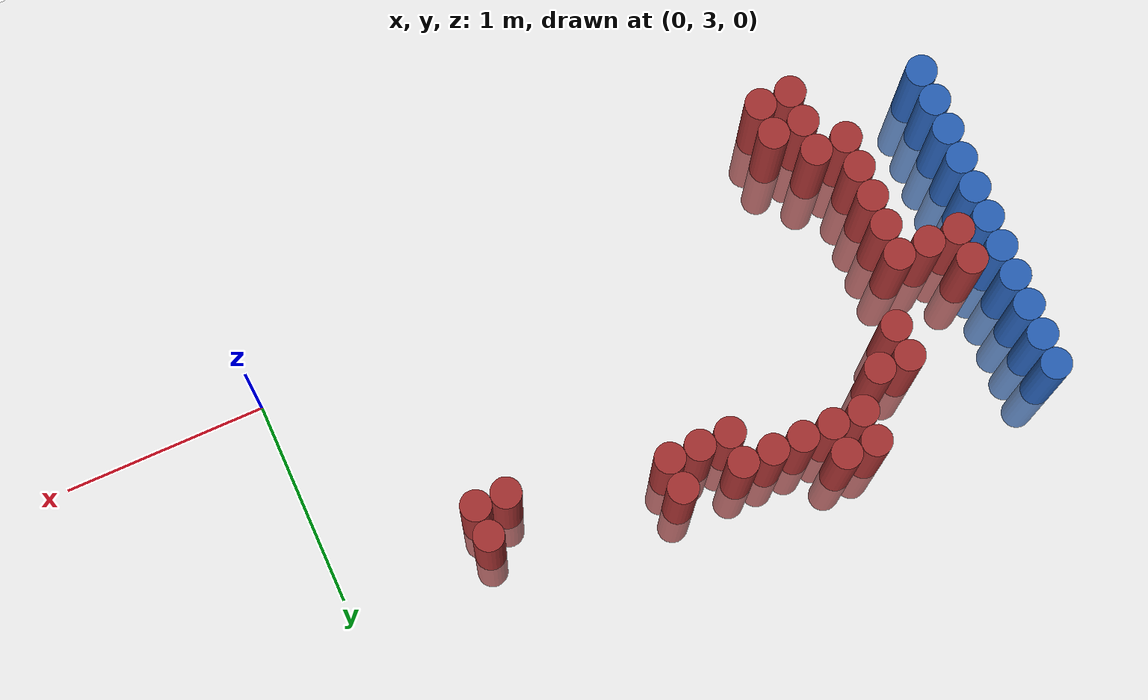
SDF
<sdf version="1.6">
 <world name="default">
  <model name="ground_plane">
   <static>1</static>
   <link name="link">
    <collision name="collision">
     <geometry><plane><normal>0 0 1</normal><size>100 100</size></plane></geometry>
     <surface><friction><ode><mu>100</mu><mu2>50</mu2></ode></friction></surface>
    </collision>
    <visual name="visual">
     <cast_shadows>0</cast_shadows>
     <geometry><plane><normal>0 0 1</normal><size>100 100</size></plane></geometry>
     <material>
      <script><uri>file://media/materials/scripts/gazebo.material</uri><name>Gazebo/Grey</name></script>
     </material>
    </visual>
   </link>
  </model>
  <model name="unit_cylinder_153">
   <static>1</static>
   <pose>-3.425000 2.875000 0.000000 0.000000 0.000000 0.000000</pose>
   <link name="link">
    <inertial>
     <mass>1</mass>
     <inertia><ixx>0.145833</ixx><ixy>0</ixy><ixz>0</ixz><iyy>0.145833</iyy><iyz>0</iyz><izz>0.125</izz></inertia>
    </inertial>
    <collision name="collision">
     <geometry><cylinder><radius>0.075000</radius><length>1.5</length></cylinder></geometry>
    </collision>
    <visual name="visual">
     <geometry><cylinder><radius>0.075000</radius><length>1.5</length></cylinder></geometry>
     <material>
      <ambient>0.152000 0.379000 0.720000 1</ambient>
      <diffuse>0.152000 0.379000 0.720000 1</diffuse>
     </material>
     <material>
      <script><name>Gazebo/Grey</name><uri>file://media/materials/scripts/gazebo.material</uri></script>
     </material>
    </visual>
   </link>
  </model>
  <model name="unit_cylinder_155">
   <static>1</static>
   <pose>-3.425000 3.025000 0.000000 0.000000 0.000000 0.000000</pose>
   <link name="link">
    <inertial>
     <mass>1</mass>
     <inertia><ixx>0.145833</ixx><ixy>0</ixy><ixz>0</ixz><iyy>0.145833</iyy><iyz>0</iyz><izz>0.125</izz></inertia>
    </inertial>
    <collision name="collision">
     <geometry><cylinder><radius>0.075000</radius><length>1.5</length></cylinder></geometry>
    </collision>
    <visual name="visual">
     <geometry><cylinder><radius>0.075000</radius><length>1.5</length></cylinder></geometry>
     <material>
      <ambient>0.152000 0.379000 0.720000 1</ambient>
      <diffuse>0.152000 0.379000 0.720000 1</diffuse>
     </material>
     <material>
      <script><name>Gazebo/Grey</name><uri>file://media/materials/scripts/gazebo.material</uri></script>
     </material>
    </visual>
   </link>
  </model>
  <model name="unit_cylinder_157">
   <static>1</static>
   <pose>-3.425000 3.175000 0.000000 0.000000 0.000000 0.000000</pose>
   <link name="link">
    <inertial>
     <mass>1</mass>
     <inertia><ixx>0.145833</ixx><ixy>0</ixy><ixz>0</ixz><iyy>0.145833</iyy><iyz>0</iyz><izz>0.125</izz></inertia>
    </inertial>
    <collision name="collision">
     <geometry><cylinder><radius>0.075000</radius><length>1.5</length></cylinder></geometry>
    </collision>
    <visual name="visual">
     <geometry><cylinder><radius>0.075000</radius><length>1.5</length></cylinder></geometry>
     <material>
      <ambient>0.152000 0.379000 0.720000 1</ambient>
      <diffuse>0.152000 0.379000 0.720000 1</diffuse>
     </material>
     <material>
      <script><name>Gazebo/Grey</name><uri>file://media/materials/scripts/gazebo.material</uri></script>
     </material>
    </visual>
   </link>
  </model>
  <model name="unit_cylinder_159">
   <static>1</static>
   <pose>-3.425000 3.325000 0.000000 0.000000 0.000000 0.000000</pose>
   <link name="link">
    <inertial>
     <mass>1</mass>
     <inertia><ixx>0.145833</ixx><ixy>0</ixy><ixz>0</ixz><iyy>0.145833</iyy><iyz>0</iyz><izz>0.125</izz></inertia>
    </inertial>
    <collision name="collision">
     <geometry><cylinder><radius>0.075000</radius><length>1.5</length></cylinder></geometry>
    </collision>
    <visual name="visual">
     <geometry><cylinder><radius>0.075000</radius><length>1.5</length></cylinder></geometry>
     <material>
      <ambient>0.152000 0.379000 0.720000 1</ambient>
      <diffuse>0.152000 0.379000 0.720000 1</diffuse>
     </material>
     <material>
      <script><name>Gazebo/Grey</name><uri>file://media/materials/scripts/gazebo.material</uri></script>
     </material>
    </visual>
   </link>
  </model>
  <model name="unit_cylinder_161">
   <static>1</static>
   <pose>-3.425000 3.475000 0.000000 0.000000 0.000000 0.000000</pose>
   <link name="link">
    <inertial>
     <mass>1</mass>
     <inertia><ixx>0.145833</ixx><ixy>0</ixy><ixz>0</ixz><iyy>0.145833</iyy><iyz>0</iyz><izz>0.125</izz></inertia>
    </inertial>
    <collision name="collision">
     <geometry><cylinder><radius>0.075000</radius><length>1.5</length></cylinder></geometry>
    </collision>
    <visual name="visual">
     <geometry><cylinder><radius>0.075000</radius><length>1.5</length></cylinder></geometry>
     <material>
      <ambient>0.152000 0.379000 0.720000 1</ambient>
      <diffuse>0.152000 0.379000 0.720000 1</diffuse>
     </material>
     <material>
      <script><name>Gazebo/Grey</name><uri>file://media/materials/scripts/gazebo.material</uri></script>
     </material>
    </visual>
   </link>
  </model>
  <model name="unit_cylinder_163">
   <static>1</static>
   <pose>-3.425000 3.625000 0.000000 0.000000 0.000000 0.000000</pose>
   <link name="link">
    <inertial>
     <mass>1</mass>
     <inertia><ixx>0.145833</ixx><ixy>0</ixy><ixz>0</ixz><iyy>0.145833</iyy><iyz>0</iyz><izz>0.125</izz></inertia>
    </inertial>
    <collision name="collision">
     <geometry><cylinder><radius>0.075000</radius><length>1.5</length></cylinder></geometry>
    </collision>
    <visual name="visual">
     <geometry><cylinder><radius>0.075000</radius><length>1.5</length></cylinder></geometry>
     <material>
      <ambient>0.152000 0.379000 0.720000 1</ambient>
      <diffuse>0.152000 0.379000 0.720000 1</diffuse>
     </material>
     <material>
      <script><name>Gazebo/Grey</name><uri>file://media/materials/scripts/gazebo.material</uri></script>
     </material>
    </visual>
   </link>
  </model>
  <model name="unit_cylinder_165">
   <static>1</static>
   <pose>-3.425000 3.775000 0.000000 0.000000 0.000000 0.000000</pose>
   <link name="link">
    <inertial>
     <mass>1</mass>
     <inertia><ixx>0.145833</ixx><ixy>0</ixy><ixz>0</ixz><iyy>0.145833</iyy><iyz>0</iyz><izz>0.125</izz></inertia>
    </inertial>
    <collision name="collision">
     <geometry><cylinder><radius>0.075000</radius><length>1.5</length></cylinder></geometry>
    </collision>
    <visual name="visual">
     <geometry><cylinder><radius>0.075000</radius><length>1.5</length></cylinder></geometry>
     <material>
      <ambient>0.152000 0.379000 0.720000 1</ambient>
      <diffuse>0.152000 0.379000 0.720000 1</diffuse>
     </material>
     <material>
      <script><name>Gazebo/Grey</name><uri>file://media/materials/scripts/gazebo.material</uri></script>
     </material>
    </visual>
   </link>
  </model>
  <model name="unit_cylinder_167">
   <static>1</static>
   <pose>-3.425000 3.925000 0.000000 0.000000 0.000000 0.000000</pose>
   <link name="link">
    <inertial>
     <mass>1</mass>
     <inertia><ixx>0.145833</ixx><ixy>0</ixy><ixz>0</ixz><iyy>0.145833</iyy><iyz>0</iyz><izz>0.125</izz></inertia>
    </inertial>
    <collision name="collision">
     <geometry><cylinder><radius>0.075000</radius><length>1.5</length></cylinder></geometry>
    </collision>
    <visual name="visual">
     <geometry><cylinder><radius>0.075000</radius><length>1.5</length></cylinder></geometry>
     <material>
      <ambient>0.152000 0.379000 0.720000 1</ambient>
      <diffuse>0.152000 0.379000 0.720000 1</diffuse>
     </material>
     <material>
      <script><name>Gazebo/Grey</name><uri>file://media/materials/scripts/gazebo.material</uri></script>
     </material>
    </visual>
   </link>
  </model>
  <model name="unit_cylinder_169">
   <static>1</static>
   <pose>-3.425000 4.075000 0.000000 0.000000 0.000000 0.000000</pose>
   <link name="link">
    <inertial>
     <mass>1</mass>
     <inertia><ixx>0.145833</ixx><ixy>0</ixy><ixz>0</ixz><iyy>0.145833</iyy><iyz>0</iyz><izz>0.125</izz></inertia>
    </inertial>
    <collision name="collision">
     <geometry><cylinder><radius>0.075000</radius><length>1.5</length></cylinder></geometry>
    </collision>
    <visual name="visual">
     <geometry><cylinder><radius>0.075000</radius><length>1.5</length></cylinder></geometry>
     <material>
      <ambient>0.152000 0.379000 0.720000 1</ambient>
      <diffuse>0.152000 0.379000 0.720000 1</diffuse>
     </material>
     <material>
      <script><name>Gazebo/Grey</name><uri>file://media/materials/scripts/gazebo.material</uri></script>
     </material>
    </visual>
   </link>
  </model>
  <model name="unit_cylinder_171">
   <static>1</static>
   <pose>-3.425000 4.225000 0.000000 0.000000 0.000000 0.000000</pose>
   <link name="link">
    <inertial>
     <mass>1</mass>
     <inertia><ixx>0.145833</ixx><ixy>0</ixy><ixz>0</ixz><iyy>0.145833</iyy><iyz>0</iyz><izz>0.125</izz></inertia>
    </inertial>
    <collision name="collision">
     <geometry><cylinder><radius>0.075000</radius><length>1.5</length></cylinder></geometry>
    </collision>
    <visual name="visual">
     <geometry><cylinder><radius>0.075000</radius><length>1.5</length></cylinder></geometry>
     <material>
      <ambient>0.152000 0.379000 0.720000 1</ambient>
      <diffuse>0.152000 0.379000 0.720000 1</diffuse>
     </material>
     <material>
      <script><name>Gazebo/Grey</name><uri>file://media/materials/scripts/gazebo.material</uri></script>
     </material>
    </visual>
   </link>
  </model>
  <model name="unit_cylinder_173">
   <static>1</static>
   <pose>-3.425000 4.375000 0.000000 0.000000 0.000000 0.000000</pose>
   <link name="link">
    <inertial>
     <mass>1</mass>
     <inertia><ixx>0.145833</ixx><ixy>0</ixy><ixz>0</ixz><iyy>0.145833</iyy><iyz>0</iyz><izz>0.125</izz></inertia>
    </inertial>
    <collision name="collision">
     <geometry><cylinder><radius>0.075000</radius><length>1.5</length></cylinder></geometry>
    </collision>
    <visual name="visual">
     <geometry><cylinder><radius>0.075000</radius><length>1.5</length></cylinder></geometry>
     <material>
      <ambient>0.152000 0.379000 0.720000 1</ambient>
      <diffuse>0.152000 0.379000 0.720000 1</diffuse>
     </material>
     <material>
      <script><name>Gazebo/Grey</name><uri>file://media/materials/scripts/gazebo.material</uri></script>
     </material>
    </visual>
   </link>
  </model>
  <model name="unit_cylinder_240">
   <static>1</static>
   <pose>-3.425000 2.875000 0.000000 0.000000 0.000000 0.000000</pose>
   <link name="link">
    <inertial>
     <mass>1</mass>
     <inertia><ixx>0.145833</ixx><ixy>0</ixy><ixz>0</ixz><iyy>0.145833</iyy><iyz>0</iyz><izz>0.125</izz></inertia>
    </inertial>
    <collision name="collision">
     <geometry><cylinder><radius>0.075000</radius><length>1.5</length></cylinder></geometry>
    </collision>
    <visual name="visual">
     <geometry><cylinder><radius>0.075000</radius><length>1.5</length></cylinder></geometry>
     <material>
      <ambient>0.152000 0.379000 0.720000 1</ambient>
      <diffuse>0.152000 0.379000 0.720000 1</diffuse>
     </material>
     <material>
      <script><name>Gazebo/Grey</name><uri>file://media/materials/scripts/gazebo.material</uri></script>
     </material>
    </visual>
   </link>
  </model>
  <model name="unit_cylinder_241">
   <static>1</static>
   <pose>-3.425000 3.025000 0.000000 0.000000 0.000000 0.000000</pose>
   <link name="link">
    <inertial>
     <mass>1</mass>
     <inertia><ixx>0.145833</ixx><ixy>0</ixy><ixz>0</ixz><iyy>0.145833</iyy><iyz>0</iyz><izz>0.125</izz></inertia>
    </inertial>
    <collision name="collision">
     <geometry><cylinder><radius>0.075000</radius><length>1.5</length></cylinder></geometry>
    </collision>
    <visual name="visual">
     <geometry><cylinder><radius>0.075000</radius><length>1.5</length></cylinder></geometry>
     <material>
      <ambient>0.152000 0.379000 0.720000 1</ambient>
      <diffuse>0.152000 0.379000 0.720000 1</diffuse>
     </material>
     <material>
      <script><name>Gazebo/Grey</name><uri>file://media/materials/scripts/gazebo.material</uri></script>
     </material>
    </visual>
   </link>
  </model>
  <model name="unit_cylinder_242">
   <static>1</static>
   <pose>-3.425000 3.175000 0.000000 0.000000 0.000000 0.000000</pose>
   <link name="link">
    <inertial>
     <mass>1</mass>
     <inertia><ixx>0.145833</ixx><ixy>0</ixy><ixz>0</ixz><iyy>0.145833</iyy><iyz>0</iyz><izz>0.125</izz></inertia>
    </inertial>
    <collision name="collision">
     <geometry><cylinder><radius>0.075000</radius><length>1.5</length></cylinder></geometry>
    </collision>
    <visual name="visual">
     <geometry><cylinder><radius>0.075000</radius><length>1.5</length></cylinder></geometry>
     <material>
      <ambient>0.152000 0.379000 0.720000 1</ambient>
      <diffuse>0.152000 0.379000 0.720000 1</diffuse>
     </material>
     <material>
      <script><name>Gazebo/Grey</name><uri>file://media/materials/scripts/gazebo.material</uri></script>
     </material>
    </visual>
   </link>
  </model>
  <model name="unit_cylinder_243">
   <static>1</static>
   <pose>-3.425000 3.325000 0.000000 0.000000 0.000000 0.000000</pose>
   <link name="link">
    <inertial>
     <mass>1</mass>
     <inertia><ixx>0.145833</ixx><ixy>0</ixy><ixz>0</ixz><iyy>0.145833</iyy><iyz>0</iyz><izz>0.125</izz></inertia>
    </inertial>
    <collision name="collision">
     <geometry><cylinder><radius>0.075000</radius><length>1.5</length></cylinder></geometry>
    </collision>
    <visual name="visual">
     <geometry><cylinder><radius>0.075000</radius><length>1.5</length></cylinder></geometry>
     <material>
      <ambient>0.152000 0.379000 0.720000 1</ambient>
      <diffuse>0.152000 0.379000 0.720000 1</diffuse>
     </material>
     <material>
      <script><name>Gazebo/Grey</name><uri>file://media/materials/scripts/gazebo.material</uri></script>
     </material>
    </visual>
   </link>
  </model>
  <model name="unit_cylinder_244">
   <static>1</static>
   <pose>-3.425000 3.475000 0.000000 0.000000 0.000000 0.000000</pose>
   <link name="link">
    <inertial>
     <mass>1</mass>
     <inertia><ixx>0.145833</ixx><ixy>0</ixy><ixz>0</ixz><iyy>0.145833</iyy><iyz>0</iyz><izz>0.125</izz></inertia>
    </inertial>
    <collision name="collision">
     <geometry><cylinder><radius>0.075000</radius><length>1.5</length></cylinder></geometry>
    </collision>
    <visual name="visual">
     <geometry><cylinder><radius>0.075000</radius><length>1.5</length></cylinder></geometry>
     <material>
      <ambient>0.152000 0.379000 0.720000 1</ambient>
      <diffuse>0.152000 0.379000 0.720000 1</diffuse>
     </material>
     <material>
      <script><name>Gazebo/Grey</name><uri>file://media/materials/scripts/gazebo.material</uri></script>
     </material>
    </visual>
   </link>
  </model>
  <model name="unit_cylinder_245">
   <static>1</static>
   <pose>-3.425000 3.625000 0.000000 0.000000 0.000000 0.000000</pose>
   <link name="link">
    <inertial>
     <mass>1</mass>
     <inertia><ixx>0.145833</ixx><ixy>0</ixy><ixz>0</ixz><iyy>0.145833</iyy><iyz>0</iyz><izz>0.125</izz></inertia>
    </inertial>
    <collision name="collision">
     <geometry><cylinder><radius>0.075000</radius><length>1.5</length></cylinder></geometry>
    </collision>
    <visual name="visual">
     <geometry><cylinder><radius>0.075000</radius><length>1.5</length></cylinder></geometry>
     <material>
      <ambient>0.152000 0.379000 0.720000 1</ambient>
      <diffuse>0.152000 0.379000 0.720000 1</diffuse>
     </material>
     <material>
      <script><name>Gazebo/Grey</name><uri>file://media/materials/scripts/gazebo.material</uri></script>
     </material>
    </visual>
   </link>
  </model>
  <model name="unit_cylinder_246">
   <static>1</static>
   <pose>-3.425000 3.775000 0.000000 0.000000 0.000000 0.000000</pose>
   <link name="link">
    <inertial>
     <mass>1</mass>
     <inertia><ixx>0.145833</ixx><ixy>0</ixy><ixz>0</ixz><iyy>0.145833</iyy><iyz>0</iyz><izz>0.125</izz></inertia>
    </inertial>
    <collision name="collision">
     <geometry><cylinder><radius>0.075000</radius><length>1.5</length></cylinder></geometry>
    </collision>
    <visual name="visual">
     <geometry><cylinder><radius>0.075000</radius><length>1.5</length></cylinder></geometry>
     <material>
      <ambient>0.152000 0.379000 0.720000 1</ambient>
      <diffuse>0.152000 0.379000 0.720000 1</diffuse>
     </material>
     <material>
      <script><name>Gazebo/Grey</name><uri>file://media/materials/scripts/gazebo.material</uri></script>
     </material>
    </visual>
   </link>
  </model>
  <model name="unit_cylinder_247">
   <static>1</static>
   <pose>-3.425000 3.925000 0.000000 0.000000 0.000000 0.000000</pose>
   <link name="link">
    <inertial>
     <mass>1</mass>
     <inertia><ixx>0.145833</ixx><ixy>0</ixy><ixz>0</ixz><iyy>0.145833</iyy><iyz>0</iyz><izz>0.125</izz></inertia>
    </inertial>
    <collision name="collision">
     <geometry><cylinder><radius>0.075000</radius><length>1.5</length></cylinder></geometry>
    </collision>
    <visual name="visual">
     <geometry><cylinder><radius>0.075000</radius><length>1.5</length></cylinder></geometry>
     <material>
      <ambient>0.152000 0.379000 0.720000 1</ambient>
      <diffuse>0.152000 0.379000 0.720000 1</diffuse>
     </material>
     <material>
      <script><name>Gazebo/Grey</name><uri>file://media/materials/scripts/gazebo.material</uri></script>
     </material>
    </visual>
   </link>
  </model>
  <model name="unit_cylinder_248">
   <static>1</static>
   <pose>-3.425000 4.075000 0.000000 0.000000 0.000000 0.000000</pose>
   <link name="link">
    <inertial>
     <mass>1</mass>
     <inertia><ixx>0.145833</ixx><ixy>0</ixy><ixz>0</ixz><iyy>0.145833</iyy><iyz>0</iyz><izz>0.125</izz></inertia>
    </inertial>
    <collision name="collision">
     <geometry><cylinder><radius>0.075000</radius><length>1.5</length></cylinder></geometry>
    </collision>
    <visual name="visual">
     <geometry><cylinder><radius>0.075000</radius><length>1.5</length></cylinder></geometry>
     <material>
      <ambient>0.152000 0.379000 0.720000 1</ambient>
      <diffuse>0.152000 0.379000 0.720000 1</diffuse>
     </material>
     <material>
      <script><name>Gazebo/Grey</name><uri>file://media/materials/scripts/gazebo.material</uri></script>
     </material>
    </visual>
   </link>
  </model>
  <model name="unit_cylinder_249">
   <static>1</static>
   <pose>-3.425000 4.225000 0.000000 0.000000 0.000000 0.000000</pose>
   <link name="link">
    <inertial>
     <mass>1</mass>
     <inertia><ixx>0.145833</ixx><ixy>0</ixy><ixz>0</ixz><iyy>0.145833</iyy><iyz>0</iyz><izz>0.125</izz></inertia>
    </inertial>
    <collision name="collision">
     <geometry><cylinder><radius>0.075000</radius><length>1.5</length></cylinder></geometry>
    </collision>
    <visual name="visual">
     <geometry><cylinder><radius>0.075000</radius><length>1.5</length></cylinder></geometry>
     <material>
      <ambient>0.152000 0.379000 0.720000 1</ambient>
      <diffuse>0.152000 0.379000 0.720000 1</diffuse>
     </material>
     <material>
      <script><name>Gazebo/Grey</name><uri>file://media/materials/scripts/gazebo.material</uri></script>
     </material>
    </visual>
   </link>
  </model>
  <model name="unit_cylinder_250">
   <static>1</static>
   <pose>-3.425000 4.375000 0.000000 0.000000 0.000000 0.000000</pose>
   <link name="link">
    <inertial>
     <mass>1</mass>
     <inertia><ixx>0.145833</ixx><ixy>0</ixy><ixz>0</ixz><iyy>0.145833</iyy><iyz>0</iyz><izz>0.125</izz></inertia>
    </inertial>
    <collision name="collision">
     <geometry><cylinder><radius>0.075000</radius><length>1.5</length></cylinder></geometry>
    </collision>
    <visual name="visual">
     <geometry><cylinder><radius>0.075000</radius><length>1.5</length></cylinder></geometry>
     <material>
      <ambient>0.152000 0.379000 0.720000 1</ambient>
      <diffuse>0.152000 0.379000 0.720000 1</diffuse>
     </material>
     <material>
      <script><name>Gazebo/Grey</name><uri>file://media/materials/scripts/gazebo.material</uri></script>
     </material>
    </visual>
   </link>
  </model>
  <model name="unit_cylinder_273">
   <static>1</static>
   <pose>-3.275000 3.625000 0.000000 0.000000 0.000000 0.000000</pose>
   <link name="link">
    <inertial>
     <mass>1</mass>
     <inertia><ixx>0.145833</ixx><ixy>0</ixy><ixz>0</ixz><iyy>0.145833</iyy><iyz>0</iyz><izz>0.125</izz></inertia>
    </inertial>
    <collision name="collision">
     <geometry><cylinder><radius>0.075000</radius><length>1.5</length></cylinder></geometry>
    </collision>
    <visual name="visual">
     <geometry><cylinder><radius>0.075000</radius><length>1.5</length></cylinder></geometry>
     <material>
      <ambient>0.648000 0.192000 0.192000 1</ambient>
      <diffuse>0.648000 0.192000 0.192000 1</diffuse>
     </material>
     <material>
      <script><name>Gazebo/Grey</name><uri>file://media/materials/scripts/gazebo.material</uri></script>
     </material>
    </visual>
   </link>
  </model>
  <model name="unit_cylinder_274">
   <static>1</static>
   <pose>-3.275000 3.775000 0.000000 0.000000 0.000000 0.000000</pose>
   <link name="link">
    <inertial>
     <mass>1</mass>
     <inertia><ixx>0.145833</ixx><ixy>0</ixy><ixz>0</ixz><iyy>0.145833</iyy><iyz>0</iyz><izz>0.125</izz></inertia>
    </inertial>
    <collision name="collision">
     <geometry><cylinder><radius>0.075000</radius><length>1.5</length></cylinder></geometry>
    </collision>
    <visual name="visual">
     <geometry><cylinder><radius>0.075000</radius><length>1.5</length></cylinder></geometry>
     <material>
      <ambient>0.648000 0.192000 0.192000 1</ambient>
      <diffuse>0.648000 0.192000 0.192000 1</diffuse>
     </material>
     <material>
      <script><name>Gazebo/Grey</name><uri>file://media/materials/scripts/gazebo.material</uri></script>
     </material>
    </visual>
   </link>
  </model>
  <model name="unit_cylinder_286">
   <static>1</static>
   <pose>-3.125000 3.625000 0.000000 0.000000 0.000000 0.000000</pose>
   <link name="link">
    <inertial>
     <mass>1</mass>
     <inertia><ixx>0.145833</ixx><ixy>0</ixy><ixz>0</ixz><iyy>0.145833</iyy><iyz>0</iyz><izz>0.125</izz></inertia>
    </inertial>
    <collision name="collision">
     <geometry><cylinder><radius>0.075000</radius><length>1.5</length></cylinder></geometry>
    </collision>
    <visual name="visual">
     <geometry><cylinder><radius>0.075000</radius><length>1.5</length></cylinder></geometry>
     <material>
      <ambient>0.648000 0.192000 0.192000 1</ambient>
      <diffuse>0.648000 0.192000 0.192000 1</diffuse>
     </material>
     <material>
      <script><name>Gazebo/Grey</name><uri>file://media/materials/scripts/gazebo.material</uri></script>
     </material>
    </visual>
   </link>
  </model>
  <model name="unit_cylinder_298">
   <static>1</static>
   <pose>-2.975000 3.025000 0.000000 0.000000 0.000000 0.000000</pose>
   <link name="link">
    <inertial>
     <mass>1</mass>
     <inertia><ixx>0.145833</ixx><ixy>0</ixy><ixz>0</ixz><iyy>0.145833</iyy><iyz>0</iyz><izz>0.125</izz></inertia>
    </inertial>
    <collision name="collision">
     <geometry><cylinder><radius>0.075000</radius><length>1.5</length></cylinder></geometry>
    </collision>
    <visual name="visual">
     <geometry><cylinder><radius>0.075000</radius><length>1.5</length></cylinder></geometry>
     <material>
      <ambient>0.648000 0.192000 0.192000 1</ambient>
      <diffuse>0.648000 0.192000 0.192000 1</diffuse>
     </material>
     <material>
      <script><name>Gazebo/Grey</name><uri>file://media/materials/scripts/gazebo.material</uri></script>
     </material>
    </visual>
   </link>
  </model>
  <model name="unit_cylinder_299">
   <static>1</static>
   <pose>-2.975000 3.175000 0.000000 0.000000 0.000000 0.000000</pose>
   <link name="link">
    <inertial>
     <mass>1</mass>
     <inertia><ixx>0.145833</ixx><ixy>0</ixy><ixz>0</ixz><iyy>0.145833</iyy><iyz>0</iyz><izz>0.125</izz></inertia>
    </inertial>
    <collision name="collision">
     <geometry><cylinder><radius>0.075000</radius><length>1.5</length></cylinder></geometry>
    </collision>
    <visual name="visual">
     <geometry><cylinder><radius>0.075000</radius><length>1.5</length></cylinder></geometry>
     <material>
      <ambient>0.648000 0.192000 0.192000 1</ambient>
      <diffuse>0.648000 0.192000 0.192000 1</diffuse>
     </material>
     <material>
      <script><name>Gazebo/Grey</name><uri>file://media/materials/scripts/gazebo.material</uri></script>
     </material>
    </visual>
   </link>
  </model>
  <model name="unit_cylinder_300">
   <static>1</static>
   <pose>-2.975000 3.325000 0.000000 0.000000 0.000000 0.000000</pose>
   <link name="link">
    <inertial>
     <mass>1</mass>
     <inertia><ixx>0.145833</ixx><ixy>0</ixy><ixz>0</ixz><iyy>0.145833</iyy><iyz>0</iyz><izz>0.125</izz></inertia>
    </inertial>
    <collision name="collision">
     <geometry><cylinder><radius>0.075000</radius><length>1.5</length></cylinder></geometry>
    </collision>
    <visual name="visual">
     <geometry><cylinder><radius>0.075000</radius><length>1.5</length></cylinder></geometry>
     <material>
      <ambient>0.648000 0.192000 0.192000 1</ambient>
      <diffuse>0.648000 0.192000 0.192000 1</diffuse>
     </material>
     <material>
      <script><name>Gazebo/Grey</name><uri>file://media/materials/scripts/gazebo.material</uri></script>
     </material>
    </visual>
   </link>
  </model>
  <model name="unit_cylinder_301">
   <static>1</static>
   <pose>-2.975000 3.475000 0.000000 0.000000 0.000000 0.000000</pose>
   <link name="link">
    <inertial>
     <mass>1</mass>
     <inertia><ixx>0.145833</ixx><ixy>0</ixy><ixz>0</ixz><iyy>0.145833</iyy><iyz>0</iyz><izz>0.125</izz></inertia>
    </inertial>
    <collision name="collision">
     <geometry><cylinder><radius>0.075000</radius><length>1.5</length></cylinder></geometry>
    </collision>
    <visual name="visual">
     <geometry><cylinder><radius>0.075000</radius><length>1.5</length></cylinder></geometry>
     <material>
      <ambient>0.648000 0.192000 0.192000 1</ambient>
      <diffuse>0.648000 0.192000 0.192000 1</diffuse>
     </material>
     <material>
      <script><name>Gazebo/Grey</name><uri>file://media/materials/scripts/gazebo.material</uri></script>
     </material>
    </visual>
   </link>
  </model>
  <model name="unit_cylinder_302">
   <static>1</static>
   <pose>-2.975000 3.625000 0.000000 0.000000 0.000000 0.000000</pose>
   <link name="link">
    <inertial>
     <mass>1</mass>
     <inertia><ixx>0.145833</ixx><ixy>0</ixy><ixz>0</ixz><iyy>0.145833</iyy><iyz>0</iyz><izz>0.125</izz></inertia>
    </inertial>
    <collision name="collision">
     <geometry><cylinder><radius>0.075000</radius><length>1.5</length></cylinder></geometry>
    </collision>
    <visual name="visual">
     <geometry><cylinder><radius>0.075000</radius><length>1.5</length></cylinder></geometry>
     <material>
      <ambient>0.648000 0.192000 0.192000 1</ambient>
      <diffuse>0.648000 0.192000 0.192000 1</diffuse>
     </material>
     <material>
      <script><name>Gazebo/Grey</name><uri>file://media/materials/scripts/gazebo.material</uri></script>
     </material>
    </visual>
   </link>
  </model>
  <model name="unit_cylinder_314">
   <static>1</static>
   <pose>-2.825000 2.725000 0.000000 0.000000 0.000000 0.000000</pose>
   <link name="link">
    <inertial>
     <mass>1</mass>
     <inertia><ixx>0.145833</ixx><ixy>0</ixy><ixz>0</ixz><iyy>0.145833</iyy><iyz>0</iyz><izz>0.125</izz></inertia>
    </inertial>
    <collision name="collision">
     <geometry><cylinder><radius>0.075000</radius><length>1.5</length></cylinder></geometry>
    </collision>
    <visual name="visual">
     <geometry><cylinder><radius>0.075000</radius><length>1.5</length></cylinder></geometry>
     <material>
      <ambient>0.648000 0.192000 0.192000 1</ambient>
      <diffuse>0.648000 0.192000 0.192000 1</diffuse>
     </material>
     <material>
      <script><name>Gazebo/Grey</name><uri>file://media/materials/scripts/gazebo.material</uri></script>
     </material>
    </visual>
   </link>
  </model>
  <model name="unit_cylinder_315">
   <static>1</static>
   <pose>-2.825000 2.875000 0.000000 0.000000 0.000000 0.000000</pose>
   <link name="link">
    <inertial>
     <mass>1</mass>
     <inertia><ixx>0.145833</ixx><ixy>0</ixy><ixz>0</ixz><iyy>0.145833</iyy><iyz>0</iyz><izz>0.125</izz></inertia>
    </inertial>
    <collision name="collision">
     <geometry><cylinder><radius>0.075000</radius><length>1.5</length></cylinder></geometry>
    </collision>
    <visual name="visual">
     <geometry><cylinder><radius>0.075000</radius><length>1.5</length></cylinder></geometry>
     <material>
      <ambient>0.648000 0.192000 0.192000 1</ambient>
      <diffuse>0.648000 0.192000 0.192000 1</diffuse>
     </material>
     <material>
      <script><name>Gazebo/Grey</name><uri>file://media/materials/scripts/gazebo.material</uri></script>
     </material>
    </visual>
   </link>
  </model>
  <model name="unit_cylinder_316">
   <static>1</static>
   <pose>-2.825000 3.025000 0.000000 0.000000 0.000000 0.000000</pose>
   <link name="link">
    <inertial>
     <mass>1</mass>
     <inertia><ixx>0.145833</ixx><ixy>0</ixy><ixz>0</ixz><iyy>0.145833</iyy><iyz>0</iyz><izz>0.125</izz></inertia>
    </inertial>
    <collision name="collision">
     <geometry><cylinder><radius>0.075000</radius><length>1.5</length></cylinder></geometry>
    </collision>
    <visual name="visual">
     <geometry><cylinder><radius>0.075000</radius><length>1.5</length></cylinder></geometry>
     <material>
      <ambient>0.648000 0.192000 0.192000 1</ambient>
      <diffuse>0.648000 0.192000 0.192000 1</diffuse>
     </material>
     <material>
      <script><name>Gazebo/Grey</name><uri>file://media/materials/scripts/gazebo.material</uri></script>
     </material>
    </visual>
   </link>
  </model>
  <model name="unit_cylinder_317">
   <static>1</static>
   <pose>-2.825000 3.925000 0.000000 0.000000 0.000000 0.000000</pose>
   <link name="link">
    <inertial>
     <mass>1</mass>
     <inertia><ixx>0.145833</ixx><ixy>0</ixy><ixz>0</ixz><iyy>0.145833</iyy><iyz>0</iyz><izz>0.125</izz></inertia>
    </inertial>
    <collision name="collision">
     <geometry><cylinder><radius>0.075000</radius><length>1.5</length></cylinder></geometry>
    </collision>
    <visual name="visual">
     <geometry><cylinder><radius>0.075000</radius><length>1.5</length></cylinder></geometry>
     <material>
      <ambient>0.648000 0.192000 0.192000 1</ambient>
      <diffuse>0.648000 0.192000 0.192000 1</diffuse>
     </material>
     <material>
      <script><name>Gazebo/Grey</name><uri>file://media/materials/scripts/gazebo.material</uri></script>
     </material>
    </visual>
   </link>
  </model>
  <model name="unit_cylinder_318">
   <static>1</static>
   <pose>-2.825000 4.075000 0.000000 0.000000 0.000000 0.000000</pose>
   <link name="link">
    <inertial>
     <mass>1</mass>
     <inertia><ixx>0.145833</ixx><ixy>0</ixy><ixz>0</ixz><iyy>0.145833</iyy><iyz>0</iyz><izz>0.125</izz></inertia>
    </inertial>
    <collision name="collision">
     <geometry><cylinder><radius>0.075000</radius><length>1.5</length></cylinder></geometry>
    </collision>
    <visual name="visual">
     <geometry><cylinder><radius>0.075000</radius><length>1.5</length></cylinder></geometry>
     <material>
      <ambient>0.648000 0.192000 0.192000 1</ambient>
      <diffuse>0.648000 0.192000 0.192000 1</diffuse>
     </material>
     <material>
      <script><name>Gazebo/Grey</name><uri>file://media/materials/scripts/gazebo.material</uri></script>
     </material>
    </visual>
   </link>
  </model>
  <model name="unit_cylinder_328">
   <static>1</static>
   <pose>-2.675000 2.725000 0.000000 0.000000 0.000000 0.000000</pose>
   <link name="link">
    <inertial>
     <mass>1</mass>
     <inertia><ixx>0.145833</ixx><ixy>0</ixy><ixz>0</ixz><iyy>0.145833</iyy><iyz>0</iyz><izz>0.125</izz></inertia>
    </inertial>
    <collision name="collision">
     <geometry><cylinder><radius>0.075000</radius><length>1.5</length></cylinder></geometry>
    </collision>
    <visual name="visual">
     <geometry><cylinder><radius>0.075000</radius><length>1.5</length></cylinder></geometry>
     <material>
      <ambient>0.648000 0.192000 0.192000 1</ambient>
      <diffuse>0.648000 0.192000 0.192000 1</diffuse>
     </material>
     <material>
      <script><name>Gazebo/Grey</name><uri>file://media/materials/scripts/gazebo.material</uri></script>
     </material>
    </visual>
   </link>
  </model>
  <model name="unit_cylinder_329">
   <static>1</static>
   <pose>-2.675000 2.875000 0.000000 0.000000 0.000000 0.000000</pose>
   <link name="link">
    <inertial>
     <mass>1</mass>
     <inertia><ixx>0.145833</ixx><ixy>0</ixy><ixz>0</ixz><iyy>0.145833</iyy><iyz>0</iyz><izz>0.125</izz></inertia>
    </inertial>
    <collision name="collision">
     <geometry><cylinder><radius>0.075000</radius><length>1.5</length></cylinder></geometry>
    </collision>
    <visual name="visual">
     <geometry><cylinder><radius>0.075000</radius><length>1.5</length></cylinder></geometry>
     <material>
      <ambient>0.648000 0.192000 0.192000 1</ambient>
      <diffuse>0.648000 0.192000 0.192000 1</diffuse>
     </material>
     <material>
      <script><name>Gazebo/Grey</name><uri>file://media/materials/scripts/gazebo.material</uri></script>
     </material>
    </visual>
   </link>
  </model>
  <model name="unit_cylinder_330">
   <static>1</static>
   <pose>-2.675000 4.075000 0.000000 0.000000 0.000000 0.000000</pose>
   <link name="link">
    <inertial>
     <mass>1</mass>
     <inertia><ixx>0.145833</ixx><ixy>0</ixy><ixz>0</ixz><iyy>0.145833</iyy><iyz>0</iyz><izz>0.125</izz></inertia>
    </inertial>
    <collision name="collision">
     <geometry><cylinder><radius>0.075000</radius><length>1.5</length></cylinder></geometry>
    </collision>
    <visual name="visual">
     <geometry><cylinder><radius>0.075000</radius><length>1.5</length></cylinder></geometry>
     <material>
      <ambient>0.648000 0.192000 0.192000 1</ambient>
      <diffuse>0.648000 0.192000 0.192000 1</diffuse>
     </material>
     <material>
      <script><name>Gazebo/Grey</name><uri>file://media/materials/scripts/gazebo.material</uri></script>
     </material>
    </visual>
   </link>
  </model>
  <model name="unit_cylinder_335">
   <static>1</static>
   <pose>-2.525000 4.225000 0.000000 0.000000 0.000000 0.000000</pose>
   <link name="link">
    <inertial>
     <mass>1</mass>
     <inertia><ixx>0.145833</ixx><ixy>0</ixy><ixz>0</ixz><iyy>0.145833</iyy><iyz>0</iyz><izz>0.125</izz></inertia>
    </inertial>
    <collision name="collision">
     <geometry><cylinder><radius>0.075000</radius><length>1.5</length></cylinder></geometry>
    </collision>
    <visual name="visual">
     <geometry><cylinder><radius>0.075000</radius><length>1.5</length></cylinder></geometry>
     <material>
      <ambient>0.648000 0.192000 0.192000 1</ambient>
      <diffuse>0.648000 0.192000 0.192000 1</diffuse>
     </material>
     <material>
      <script><name>Gazebo/Grey</name><uri>file://media/materials/scripts/gazebo.material</uri></script>
     </material>
    </visual>
   </link>
  </model>
  <model name="unit_cylinder_336">
   <static>1</static>
   <pose>-2.525000 4.375000 0.000000 0.000000 0.000000 0.000000</pose>
   <link name="link">
    <inertial>
     <mass>1</mass>
     <inertia><ixx>0.145833</ixx><ixy>0</ixy><ixz>0</ixz><iyy>0.145833</iyy><iyz>0</iyz><izz>0.125</izz></inertia>
    </inertial>
    <collision name="collision">
     <geometry><cylinder><radius>0.075000</radius><length>1.5</length></cylinder></geometry>
    </collision>
    <visual name="visual">
     <geometry><cylinder><radius>0.075000</radius><length>1.5</length></cylinder></geometry>
     <material>
      <ambient>0.648000 0.192000 0.192000 1</ambient>
      <diffuse>0.648000 0.192000 0.192000 1</diffuse>
     </material>
     <material>
      <script><name>Gazebo/Grey</name><uri>file://media/materials/scripts/gazebo.material</uri></script>
     </material>
    </visual>
   </link>
  </model>
  <model name="unit_cylinder_343">
   <static>1</static>
   <pose>-2.375000 4.225000 0.000000 0.000000 0.000000 0.000000</pose>
   <link name="link">
    <inertial>
     <mass>1</mass>
     <inertia><ixx>0.145833</ixx><ixy>0</ixy><ixz>0</ixz><iyy>0.145833</iyy><iyz>0</iyz><izz>0.125</izz></inertia>
    </inertial>
    <collision name="collision">
     <geometry><cylinder><radius>0.075000</radius><length>1.5</length></cylinder></geometry>
    </collision>
    <visual name="visual">
     <geometry><cylinder><radius>0.075000</radius><length>1.5</length></cylinder></geometry>
     <material>
      <ambient>0.648000 0.192000 0.192000 1</ambient>
      <diffuse>0.648000 0.192000 0.192000 1</diffuse>
     </material>
     <material>
      <script><name>Gazebo/Grey</name><uri>file://media/materials/scripts/gazebo.material</uri></script>
     </material>
    </visual>
   </link>
  </model>
  <model name="unit_cylinder_344">
   <static>1</static>
   <pose>-2.375000 4.375000 0.000000 0.000000 0.000000 0.000000</pose>
   <link name="link">
    <inertial>
     <mass>1</mass>
     <inertia><ixx>0.145833</ixx><ixy>0</ixy><ixz>0</ixz><iyy>0.145833</iyy><iyz>0</iyz><izz>0.125</izz></inertia>
    </inertial>
    <collision name="collision">
     <geometry><cylinder><radius>0.075000</radius><length>1.5</length></cylinder></geometry>
    </collision>
    <visual name="visual">
     <geometry><cylinder><radius>0.075000</radius><length>1.5</length></cylinder></geometry>
     <material>
      <ambient>0.648000 0.192000 0.192000 1</ambient>
      <diffuse>0.648000 0.192000 0.192000 1</diffuse>
     </material>
     <material>
      <script><name>Gazebo/Grey</name><uri>file://media/materials/scripts/gazebo.material</uri></script>
     </material>
    </visual>
   </link>
  </model>
  <model name="unit_cylinder_356">
   <static>1</static>
   <pose>-2.225000 4.225000 0.000000 0.000000 0.000000 0.000000</pose>
   <link name="link">
    <inertial>
     <mass>1</mass>
     <inertia><ixx>0.145833</ixx><ixy>0</ixy><ixz>0</ixz><iyy>0.145833</iyy><iyz>0</iyz><izz>0.125</izz></inertia>
    </inertial>
    <collision name="collision">
     <geometry><cylinder><radius>0.075000</radius><length>1.5</length></cylinder></geometry>
    </collision>
    <visual name="visual">
     <geometry><cylinder><radius>0.075000</radius><length>1.5</length></cylinder></geometry>
     <material>
      <ambient>0.648000 0.192000 0.192000 1</ambient>
      <diffuse>0.648000 0.192000 0.192000 1</diffuse>
     </material>
     <material>
      <script><name>Gazebo/Grey</name><uri>file://media/materials/scripts/gazebo.material</uri></script>
     </material>
    </visual>
   </link>
  </model>
  <model name="unit_cylinder_368">
   <static>1</static>
   <pose>-2.075000 4.225000 0.000000 0.000000 0.000000 0.000000</pose>
   <link name="link">
    <inertial>
     <mass>1</mass>
     <inertia><ixx>0.145833</ixx><ixy>0</ixy><ixz>0</ixz><iyy>0.145833</iyy><iyz>0</iyz><izz>0.125</izz></inertia>
    </inertial>
    <collision name="collision">
     <geometry><cylinder><radius>0.075000</radius><length>1.5</length></cylinder></geometry>
    </collision>
    <visual name="visual">
     <geometry><cylinder><radius>0.075000</radius><length>1.5</length></cylinder></geometry>
     <material>
      <ambient>0.648000 0.192000 0.192000 1</ambient>
      <diffuse>0.648000 0.192000 0.192000 1</diffuse>
     </material>
     <material>
      <script><name>Gazebo/Grey</name><uri>file://media/materials/scripts/gazebo.material</uri></script>
     </material>
    </visual>
   </link>
  </model>
  <model name="unit_cylinder_378">
   <static>1</static>
   <pose>-1.925000 4.075000 0.000000 0.000000 0.000000 0.000000</pose>
   <link name="link">
    <inertial>
     <mass>1</mass>
     <inertia><ixx>0.145833</ixx><ixy>0</ixy><ixz>0</ixz><iyy>0.145833</iyy><iyz>0</iyz><izz>0.125</izz></inertia>
    </inertial>
    <collision name="collision">
     <geometry><cylinder><radius>0.075000</radius><length>1.5</length></cylinder></geometry>
    </collision>
    <visual name="visual">
     <geometry><cylinder><radius>0.075000</radius><length>1.5</length></cylinder></geometry>
     <material>
      <ambient>0.648000 0.192000 0.192000 1</ambient>
      <diffuse>0.648000 0.192000 0.192000 1</diffuse>
     </material>
     <material>
      <script><name>Gazebo/Grey</name><uri>file://media/materials/scripts/gazebo.material</uri></script>
     </material>
    </visual>
   </link>
  </model>
  <model name="unit_cylinder_379">
   <static>1</static>
   <pose>-1.925000 4.225000 0.000000 0.000000 0.000000 0.000000</pose>
   <link name="link">
    <inertial>
     <mass>1</mass>
     <inertia><ixx>0.145833</ixx><ixy>0</ixy><ixz>0</ixz><iyy>0.145833</iyy><iyz>0</iyz><izz>0.125</izz></inertia>
    </inertial>
    <collision name="collision">
     <geometry><cylinder><radius>0.075000</radius><length>1.5</length></cylinder></geometry>
    </collision>
    <visual name="visual">
     <geometry><cylinder><radius>0.075000</radius><length>1.5</length></cylinder></geometry>
     <material>
      <ambient>0.648000 0.192000 0.192000 1</ambient>
      <diffuse>0.648000 0.192000 0.192000 1</diffuse>
     </material>
     <material>
      <script><name>Gazebo/Grey</name><uri>file://media/materials/scripts/gazebo.material</uri></script>
     </material>
    </visual>
   </link>
  </model>
  <model name="unit_cylinder_388">
   <static>1</static>
   <pose>-1.775000 4.075000 0.000000 0.000000 0.000000 0.000000</pose>
   <link name="link">
    <inertial>
     <mass>1</mass>
     <inertia><ixx>0.145833</ixx><ixy>0</ixy><ixz>0</ixz><iyy>0.145833</iyy><iyz>0</iyz><izz>0.125</izz></inertia>
    </inertial>
    <collision name="collision">
     <geometry><cylinder><radius>0.075000</radius><length>1.5</length></cylinder></geometry>
    </collision>
    <visual name="visual">
     <geometry><cylinder><radius>0.075000</radius><length>1.5</length></cylinder></geometry>
     <material>
      <ambient>0.648000 0.192000 0.192000 1</ambient>
      <diffuse>0.648000 0.192000 0.192000 1</diffuse>
     </material>
     <material>
      <script><name>Gazebo/Grey</name><uri>file://media/materials/scripts/gazebo.material</uri></script>
     </material>
    </visual>
   </link>
  </model>
  <model name="unit_cylinder_398">
   <static>1</static>
   <pose>-1.625000 4.075000 0.000000 0.000000 0.000000 0.000000</pose>
   <link name="link">
    <inertial>
     <mass>1</mass>
     <inertia><ixx>0.145833</ixx><ixy>0</ixy><ixz>0</ixz><iyy>0.145833</iyy><iyz>0</iyz><izz>0.125</izz></inertia>
    </inertial>
    <collision name="collision">
     <geometry><cylinder><radius>0.075000</radius><length>1.5</length></cylinder></geometry>
    </collision>
    <visual name="visual">
     <geometry><cylinder><radius>0.075000</radius><length>1.5</length></cylinder></geometry>
     <material>
      <ambient>0.648000 0.192000 0.192000 1</ambient>
      <diffuse>0.648000 0.192000 0.192000 1</diffuse>
     </material>
     <material>
      <script><name>Gazebo/Grey</name><uri>file://media/materials/scripts/gazebo.material</uri></script>
     </material>
    </visual>
   </link>
  </model>
  <model name="unit_cylinder_399">
   <static>1</static>
   <pose>-1.625000 4.225000 0.000000 0.000000 0.000000 0.000000</pose>
   <link name="link">
    <inertial>
     <mass>1</mass>
     <inertia><ixx>0.145833</ixx><ixy>0</ixy><ixz>0</ixz><iyy>0.145833</iyy><iyz>0</iyz><izz>0.125</izz></inertia>
    </inertial>
    <collision name="collision">
     <geometry><cylinder><radius>0.075000</radius><length>1.5</length></cylinder></geometry>
    </collision>
    <visual name="visual">
     <geometry><cylinder><radius>0.075000</radius><length>1.5</length></cylinder></geometry>
     <material>
      <ambient>0.648000 0.192000 0.192000 1</ambient>
      <diffuse>0.648000 0.192000 0.192000 1</diffuse>
     </material>
     <material>
      <script><name>Gazebo/Grey</name><uri>file://media/materials/scripts/gazebo.material</uri></script>
     </material>
    </visual>
   </link>
  </model>
  <model name="unit_cylinder_443">
   <static>1</static>
   <pose>-0.875000 3.925000 0.000000 0.000000 0.000000 0.000000</pose>
   <link name="link">
    <inertial>
     <mass>1</mass>
     <inertia><ixx>0.145833</ixx><ixy>0</ixy><ixz>0</ixz><iyy>0.145833</iyy><iyz>0</iyz><izz>0.125</izz></inertia>
    </inertial>
    <collision name="collision">
     <geometry><cylinder><radius>0.075000</radius><length>1.5</length></cylinder></geometry>
    </collision>
    <visual name="visual">
     <geometry><cylinder><radius>0.075000</radius><length>1.5</length></cylinder></geometry>
     <material>
      <ambient>0.648000 0.192000 0.192000 1</ambient>
      <diffuse>0.648000 0.192000 0.192000 1</diffuse>
     </material>
     <material>
      <script><name>Gazebo/Grey</name><uri>file://media/materials/scripts/gazebo.material</uri></script>
     </material>
    </visual>
   </link>
  </model>
  <model name="unit_cylinder_446">
   <static>1</static>
   <pose>-0.725000 3.925000 0.000000 0.000000 0.000000 0.000000</pose>
   <link name="link">
    <inertial>
     <mass>1</mass>
     <inertia><ixx>0.145833</ixx><ixy>0</ixy><ixz>0</ixz><iyy>0.145833</iyy><iyz>0</iyz><izz>0.125</izz></inertia>
    </inertial>
    <collision name="collision">
     <geometry><cylinder><radius>0.075000</radius><length>1.5</length></cylinder></geometry>
    </collision>
    <visual name="visual">
     <geometry><cylinder><radius>0.075000</radius><length>1.5</length></cylinder></geometry>
     <material>
      <ambient>0.648000 0.192000 0.192000 1</ambient>
      <diffuse>0.648000 0.192000 0.192000 1</diffuse>
     </material>
     <material>
      <script><name>Gazebo/Grey</name><uri>file://media/materials/scripts/gazebo.material</uri></script>
     </material>
    </visual>
   </link>
  </model>
  <model name="unit_cylinder_447">
   <static>1</static>
   <pose>-0.725000 4.075000 0.000000 0.000000 0.000000 0.000000</pose>
   <link name="link">
    <inertial>
     <mass>1</mass>
     <inertia><ixx>0.145833</ixx><ixy>0</ixy><ixz>0</ixz><iyy>0.145833</iyy><iyz>0</iyz><izz>0.125</izz></inertia>
    </inertial>
    <collision name="collision">
     <geometry><cylinder><radius>0.075000</radius><length>1.5</length></cylinder></geometry>
    </collision>
    <visual name="visual">
     <geometry><cylinder><radius>0.075000</radius><length>1.5</length></cylinder></geometry>
     <material>
      <ambient>0.648000 0.192000 0.192000 1</ambient>
      <diffuse>0.648000 0.192000 0.192000 1</diffuse>
     </material>
     <material>
      <script><name>Gazebo/Grey</name><uri>file://media/materials/scripts/gazebo.material</uri></script>
     </material>
    </visual>
   </link>
  </model>
 </world>
</sdf>
